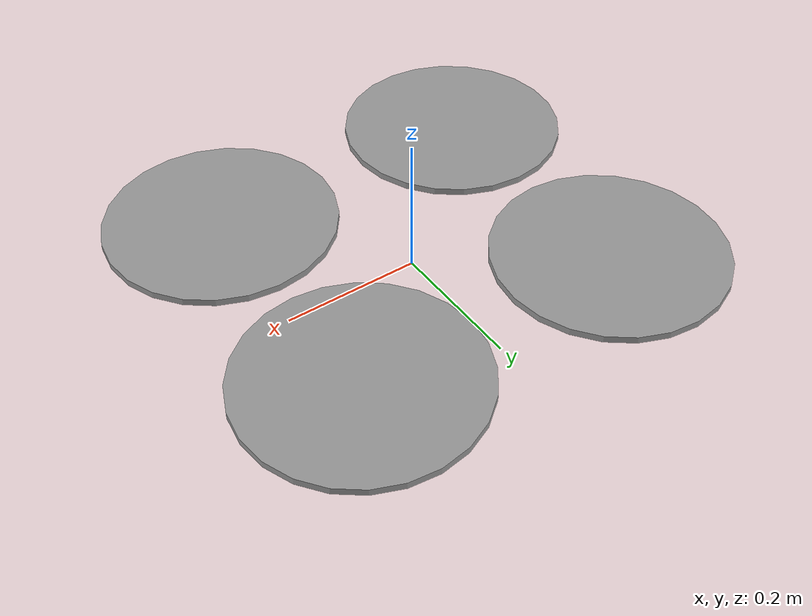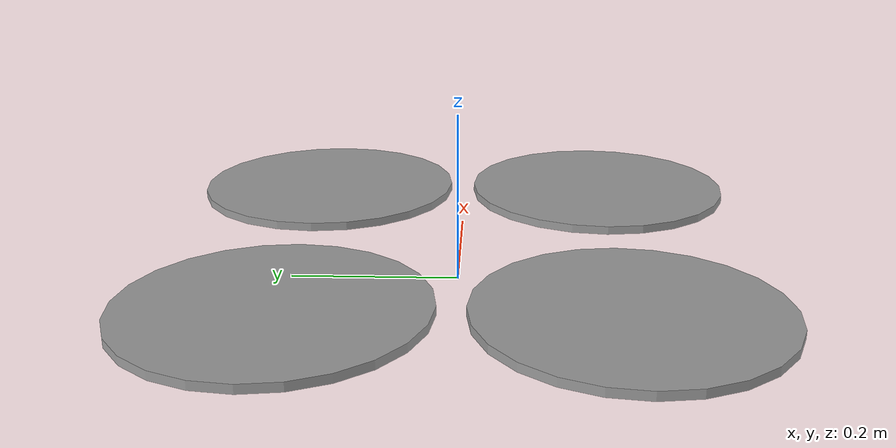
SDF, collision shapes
<?xml version="1.0"?>
<sdf version="1.6">
  <model name="Pam">
    <pose>0 0 0 0 0 0</pose>
    <link name="base_link">
      <pose frame="">0 0 0 0 -0 0</pose>
      <inertial>
        <pose frame="">0 0 0 0 -0 0</pose>
        <mass>3.461</mass>
        <inertia>
          <ixx>0.0324</ixx>
          <iyy>0.0324</iyy>
          <izz>0.0519</izz>
        </inertia>
      </inertial>
      <collision name="base_link_inertia_collision">
        <pose frame="">0 0 -0.036503 0 -0 0</pose>
        <geometry>
          <box>
            <size>0.76 0.72 0.3</size>
          </box>
        </geometry>
      </collision>

      <visual name="plate1_visual">
        <pose>0.0 0.0 0.0 0 0 0</pose>
        <geometry>
	  <box>
	    <size>0.14 0.14 0.001</size>
	  </box>
        </geometry>
        <material>
	  <ambient>200 200 200 1</ambient>
	  <diffuse>200 200 200 1</diffuse>
        </material>
      </visual>
      <visual name="plate2_visual">
        <pose>0.0 0.0 -0.04 0 0 0</pose>
        <geometry>
	  <box>
	    <size>0.14 0.14 0.001</size>
	  </box>
        </geometry>
        <material>
	  <ambient>200 200 200 1</ambient>
	  <diffuse>200 200 200 1</diffuse>
        </material>
      </visual>
      <visual name="plate3_visual">
        <pose>0.0 0.0 -0.09 0 0 0</pose>
        <geometry>
	  <box>
	    <size>0.14 0.14 0.001</size>
	  </box>
        </geometry>
        <material>
	  <ambient>200 200 200 1</ambient>
	  <diffuse>200 200 200 1</diffuse>
        </material>
      </visual>
      <visual name="plate4_visual">
        <pose>0.015 0.0 -0.13 0 0 0</pose>
        <geometry>
	  <box>
	    <size>0.17 0.14 0.001</size>
	  </box>
        </geometry>
        <material>
	  <ambient>200 200 200 1</ambient>
	  <diffuse>200 200 200 1</diffuse>
        </material>
      </visual>
      <visual name="brix_visual">
        <pose>0.0 0.0 -0.065 0 0 0</pose>
        <geometry>
	  <box>
	    <size>0.12 0.12 0.05</size>
	  </box>
        </geometry>
        <material>
	  <ambient>2 2 2 1</ambient>
	  <diffuse>2 2 2 1</diffuse>
        </material>
      </visual>
      <visual name="battery_visual">
        <pose>0.0 0.0 -0.11 0 0 0</pose>
        <geometry>
	  <box>
	    <size>0.14 0.08 0.04</size>
	  </box>
        </geometry>
        <material>
	  <ambient>2 2 200 1</ambient>
	  <diffuse>2 2 200 1</diffuse>
        </material>
      </visual>

      <visual name="leg1_visual">
        <pose>0.08 0.11 -0.158 -0.6 0 0</pose>
        <geometry>
	  <box>
	    <size>0.04 0.1 0.001</size>
	  </box>
        </geometry>
        <material>
	  <ambient>150 150 150 1</ambient>
	  <diffuse>150 150 150 1</diffuse>
        </material>
      </visual>
      <visual name="leg2_visual">
        <pose>0.08 -0.11 -0.158 0.6 0 0</pose>
        <geometry>
	  <box>
	    <size>0.04 0.1 0.001</size>
	  </box>
        </geometry>
        <material>
	  <ambient>150 150 150 1</ambient>
	  <diffuse>150 150 150 1</diffuse>
        </material>
      </visual>
      <visual name="leg3_visual">
        <pose>-0.05 0.11 -0.158 -0.6 0 0</pose>
        <geometry>
	  <box>
	    <size>0.04 0.1 0.001</size>
	  </box>
        </geometry>
        <material>
	  <ambient>150 150 150 1</ambient>
	  <diffuse>150 150 150 1</diffuse>
        </material>
      </visual>
      <visual name="leg4_visual">
        <pose>-0.05 -0.11 -0.158 0.6 0 0</pose>
        <geometry>
	  <box>
	    <size>0.04 0.1 0.001</size>
	  </box>
        </geometry>
        <material>
	  <ambient>150 150 150 1</ambient>
	  <diffuse>150 150 150 1</diffuse>
        </material>
      </visual>

      <visual name="antenna1_visual">
        <pose>0.05 -0.05 0.05 0 0 0</pose>
        <geometry>
	  <cylinder>
            <length>0.1</length>
            <radius>0.005</radius>
	  </cylinder>
        </geometry>
      </visual>
      <visual name="antenna2_visual">
        <pose>-0.05 -0.05 0.05 0 0 0</pose>
        <geometry>
	  <cylinder>
            <length>0.1</length>
            <radius>0.005</radius>
	  </cylinder>
        </geometry>
        <material>
	  <ambient>15 15 15 1</ambient>
	  <diffuse>15 15 15 1</diffuse>
        </material>
      </visual>

      <visual name="prop_guard1_visual">
        <pose>0.38 0 0.05 1.570796327 0 0</pose>
        <geometry>
	  <cylinder>
            <length>0.48</length>
            <radius>0.002</radius>
	  </cylinder>
        </geometry>
        <material>
	  <ambient>15 15 15 1</ambient>
	  <diffuse>15 15 15 1</diffuse>
        </material>
      </visual>
      <visual name="prop_guard2_visual">
        <pose>0 0.36 0.05 0 1.570796327 0</pose>
        <geometry>
	  <cylinder>
            <length>0.52</length>
            <radius>0.002</radius>
	  </cylinder>
        </geometry>
        <material>
	  <ambient>15 15 15 1</ambient>
	  <diffuse>15 15 15 1</diffuse>
        </material>
      </visual>
      <visual name="prop_guard3_visual">
        <pose>-0.38 0 0.05 1.570796327 0 0</pose>
        <geometry>
	  <cylinder>
            <length>0.48</length>
            <radius>0.002</radius>
	  </cylinder>
        </geometry>
        <material>
	  <ambient>15 15 15 1</ambient>
	  <diffuse>15 15 15 1</diffuse>
        </material>
      </visual>
      <visual name="prop_guard4_visual">
        <pose>0 -0.36 0.05 0 1.570796327 0</pose>
        <geometry>
	  <cylinder>
            <length>0.52</length>
            <radius>0.002</radius>
	  </cylinder>
        </geometry>
        <material>
	  <ambient>15 15 15 1</ambient>
	  <diffuse>15 15 15 1</diffuse>
        </material>
      </visual>

      <visual name="prop_guard5_visual">
        <pose>0.32 0.3 0.05 1.570796327 0 0.7854</pose>
        <geometry>
	  <cylinder>
            <length>0.17</length>
            <radius>0.002</radius>
	  </cylinder>
        </geometry>
        <material>
	  <ambient>15 15 15 1</ambient>
	  <diffuse>15 15 15 1</diffuse>
        </material>
      </visual>
      <visual name="prop_guard6_visual">
        <pose>-0.32 -0.3 0.05 1.570796327 0 0.7854</pose>
        <geometry>
	  <cylinder>
            <length>0.17</length>
            <radius>0.002</radius>
	  </cylinder>
        </geometry>
        <material>
	  <ambient>15 15 15 1</ambient>
	  <diffuse>15 15 15 1</diffuse>
        </material>
      </visual>
      <visual name="prop_guard7_visual">
        <pose>-0.32 0.3 0.05 1.570796327 0 -0.7854</pose>
        <geometry>
	  <cylinder>
            <length>0.17</length>
            <radius>0.002</radius>
	  </cylinder>
        </geometry>
        <material>
	  <ambient>15 15 15 1</ambient>
	  <diffuse>15 15 15 1</diffuse>
        </material>
      </visual>
      <visual name="prop_guard8_visual">
        <pose>0.32 -0.3 0.05 1.570796327 0 -0.7854</pose>
        <geometry>
	  <cylinder>
            <length>0.17</length>
            <radius>0.002</radius>
	  </cylinder>
        </geometry>
        <material>
	  <ambient>15 15 15 1</ambient>
	  <diffuse>15 15 15 1</diffuse>
        </material>
      </visual>

      <visual name="prop_guard9_visual">
        <pose>0.32 0.3 0.025 0 0 0</pose>
        <geometry>
	  <cylinder>
            <length>0.055</length>
            <radius>0.004</radius>
	  </cylinder>
        </geometry>
        <material>
	  <ambient>15 15 15 1</ambient>
	  <diffuse>15 15 15 1</diffuse>
        </material>
      </visual>
      <visual name="prop_guard10_visual">
        <pose>-0.32 0.3 0.025 0 0 0</pose>
        <geometry>
	  <cylinder>
            <length>0.055</length>
            <radius>0.004</radius>
	  </cylinder>
        </geometry>
        <material>
	  <ambient>15 15 15 1</ambient>
	  <diffuse>15 15 15 1</diffuse>
        </material>
      </visual>
      <visual name="prop_guard11_visual">
        <pose>0.32 -0.3 0.025 0 0 0</pose>
        <geometry>
	  <cylinder>
            <length>0.055</length>
            <radius>0.004</radius>
	  </cylinder>
        </geometry>
        <material>
	  <ambient>15 15 15 1</ambient>
	  <diffuse>15 15 15 1</diffuse>
        </material>
      </visual>
      <visual name="prop_guard12_visual">
        <pose>-0.32 -0.3 0.025 0 0 0</pose>
        <geometry>
	  <cylinder>
            <length>0.055</length>
            <radius>0.004</radius>
	  </cylinder>
        </geometry>
        <material>
	  <ambient>15 15 15 1</ambient>
	  <diffuse>15 15 15 1</diffuse>
        </material>
      </visual>

      <visual name="prop_guard13_visual">
        <pose>0.265 0.245 -0.005 1.570796327 0 -0.7854</pose>
        <geometry>
	  <cylinder>
            <length>0.16</length>
            <radius>0.004</radius>
	  </cylinder>
        </geometry>
        <material>
	  <ambient>15 15 15 1</ambient>
	  <diffuse>15 15 15 1</diffuse>
        </material>
      </visual>
      <visual name="prop_guard14_visual">
        <pose>-0.265 -0.245 -0.005 1.570796327 0 -0.7854</pose>
        <geometry>
	  <cylinder>
            <length>0.16</length>
            <radius>0.004</radius>
	  </cylinder>
        </geometry>
        <material>
	  <ambient>15 15 15 1</ambient>
	  <diffuse>15 15 15 1</diffuse>
        </material>
      </visual>
      <visual name="prop_guard15_visual">
        <pose>-0.265 0.245 -0.005 1.570796327 0 0.7854</pose>
        <geometry>
	  <cylinder>
            <length>0.16</length>
            <radius>0.004</radius>
	  </cylinder>
        </geometry>
        <material>
	  <ambient>15 15 15 1</ambient>
	  <diffuse>15 15 15 1</diffuse>
        </material>
      </visual>
      <visual name="prop_guard16_visual">
        <pose>0.265 -0.245 -0.005 1.570796327 0 0.7854</pose>
        <geometry>
	  <cylinder>
            <length>0.16</length>
            <radius>0.004</radius>
	  </cylinder>
        </geometry>
        <material>
	  <ambient>15 15 15 1</ambient>
	  <diffuse>15 15 15 1</diffuse>
        </material>
      </visual>

      <visual name="arm1_visual">
        <pose>0.13 0.12 -0.005 0 0 0.74</pose>
        <geometry>
	  <box>
	    <size>0.21 0.03 0.01</size>
	  </box>
        </geometry>
        <material>
	  <ambient>15 15 15 1</ambient>
	  <diffuse>15 15 15 1</diffuse>
        </material>
      </visual>
      <visual name="arm2_visual">
        <pose>0.13 -0.12 -0.005 0 0 -0.74</pose>
        <geometry>
	  <box>
	    <size>0.21 0.03 0.01</size>
	  </box>
        </geometry>
        <material>
	  <ambient>15 15 15 1</ambient>
	  <diffuse>15 15 15 1</diffuse>
        </material>
      </visual>
      <visual name="arm3_visual">
        <pose>-0.13 0.12 -0.005 0 0 -0.74</pose>
        <geometry>
	  <box>
	    <size>0.21 0.03 0.01</size>
	  </box>
        </geometry>
        <material>
	  <ambient>250 250 250 1</ambient>
	  <diffuse>250 250 250 1</diffuse>
        </material>
      </visual>
      <visual name="arm4_visual">
        <pose>-0.13 -0.12 -0.005 0 0 0.74</pose>
        <geometry>
	  <box>
	    <size>0.21 0.03 0.01</size>
	  </box>
        </geometry>
        <material>
	  <ambient>250 250 250 1</ambient>
	  <diffuse>250 250 250 1</diffuse>
        </material>
      </visual>

      <visual name="arm1a_visual">
        <pose>0.06 0.06 -0.025 0 0 0.02</pose>
        <geometry>
	  <box>
	    <size>0.02 0.02 0.03</size>
	  </box>
        </geometry>
        <material>
	  <ambient>15 15 15 1</ambient>
	  <diffuse>15 15 15 1</diffuse>
        </material>
      </visual>
      <visual name="arm2a_visual">
        <pose>0.06 -0.06 -0.025 0 0 0.02</pose>
        <geometry>
	  <box>
	    <size>0.02 0.02 0.03</size>
	  </box>
        </geometry>
        <material>
	  <ambient>15 15 15 1</ambient>
	  <diffuse>15 15 15 1</diffuse>
        </material>
      </visual>
      <visual name="arm3a_visual">
        <pose>-0.06 0.06 -0.025 0 0 0.02</pose>
        <geometry>
	  <box>
	    <size>0.02 0.02 0.03</size>
	  </box>
        </geometry>
        <material>
	  <ambient>250 250 250 1</ambient>
	  <diffuse>250 250 250 1</diffuse>
        </material>
      </visual>
      <visual name="arm4a_visual">
        <pose>-0.06 -0.06 -0.025 0 0 0.02</pose>
        <geometry>
	  <box>
	    <size>0.02 0.02 0.03</size>
	  </box>
        </geometry>
        <material>
	  <ambient>250 250 250 1</ambient>
	  <diffuse>250 250 250 1</diffuse>
        </material>
      </visual>

      <visual name="motor1_visual">
        <pose>0.2 0.18 0.02 0 0 0</pose>
        <geometry>
	  <cylinder>
            <length>0.04</length>
            <radius>0.02</radius>
	  </cylinder>
        </geometry>
        <material>
	  <ambient>20 20 20 1</ambient>
	  <diffuse>20 20 20 1</diffuse>
        </material>
      </visual>
      <visual name="motor2_visual">
        <pose>-0.2 0.18 0.02 0 0 0</pose>
        <geometry>
	  <cylinder>
            <length>0.04</length>
            <radius>0.02</radius>
	  </cylinder>
        </geometry>
        <material>
	  <ambient>20 20 20 1</ambient>
	  <diffuse>20 20 20 1</diffuse>
        </material>
      </visual>
      <visual name="motor3_visual">
        <pose>0.2 -0.18 0.02 0 0 0</pose>
        <geometry>
	  <cylinder>
            <length>0.04</length>
            <radius>0.02</radius>
	  </cylinder>
        </geometry>
        <material>
	  <ambient>20 20 20 1</ambient>
	  <diffuse>20 20 20 1</diffuse>
        </material>
      </visual>
      <visual name="motor4_visual">
        <pose>-0.2 -0.18 0.02 0 0 0</pose>
        <geometry>
	  <cylinder>
            <length>0.04</length>
            <radius>0.02</radius>
	  </cylinder>
        </geometry>
        <material>
	  <ambient>20 20 20 1</ambient>
	  <diffuse>20 20 20 1</diffuse>
        </material>
      </visual>

      <visual name="lightbar_visual">
        <pose>0.095 -0.06 -0.1 0 0 0</pose>
        <geometry>
	  <box>
	    <size>0.001 0.02 0.06</size>
	  </box>
        </geometry>
        <material>
	  <ambient>200 200 200 1</ambient>
	  <diffuse>200 200 200 1</diffuse>
        </material>
      </visual>

      <light name="light_source1" type="spot">
        <pose frame="">0.1 -0.05 -0.11 -0.01 -1.570796327 0</pose>
        <attenuation>
          <range>15</range>
          <linear>0</linear>
          <constant>0.1</constant>
          <quadratic>0.01</quadratic>
        </attenuation>
        <diffuse>0.8 0.8 0.5 1</diffuse>
        <specular>0.8 0.8 0.5 1</specular>
        <spot>
          <inner_angle>1</inner_angle>
          <outer_angle>2.5</outer_angle>
          <falloff>1</falloff>
        </spot>
        <direction>0 0 -1</direction>
        <cast_shadows>1</cast_shadows>
      </light>
      <light name="light_source2" type="spot">
        <pose frame="">0 -0.09 -0.05 -0.01 -1.570796327 -1.570796327</pose>
        <attenuation>
          <range>15</range>
          <linear>0</linear>
          <constant>0.1</constant>
          <quadratic>0.01</quadratic>
        </attenuation>
        <diffuse>0.8 0.8 0.5 1</diffuse>
        <specular>0.8 0.8 0.5 1</specular>
        <spot>
          <inner_angle>1</inner_angle>
          <outer_angle>2.5</outer_angle>
          <falloff>1</falloff>
        </spot>
        <direction>0 0 -1</direction>
        <cast_shadows>1</cast_shadows>
      </light>
      <light name="light_source3" type="spot">
        <pose frame="">0 0.09 -0.05 -0.01 -1.570796327 1.570796327</pose>
        <attenuation>
          <range>15</range>
          <linear>0</linear>
          <constant>0.1</constant>
          <quadratic>0.01</quadratic>
        </attenuation>
        <diffuse>0.8 0.8 0.5 1</diffuse>
        <specular>0.8 0.8 0.5 1</specular>
        <spot>
          <inner_angle>1</inner_angle>
          <outer_angle>2.5</outer_angle>
          <falloff>1</falloff>
        </spot>
        <direction>0 0 -1</direction>
        <cast_shadows>1</cast_shadows>
      </light>

      <sensor name="imu_sensor" type="imu">
        <always_on>1</always_on>
        <update_rate>250</update_rate>
        <imu>
          <enable_orientation>0</enable_orientation>
          <angular_velocity>
            <x>
              <noise type="gaussian">
                <mean>0</mean>
                <stddev>0.009</stddev>
                <bias_mean>0.00075</bias_mean>
                <bias_stddev>0.005</bias_stddev>
                <dynamic_bias_stddev>0.00002</dynamic_bias_stddev>
                <dynamic_bias_correlation_time>400.0</dynamic_bias_correlation_time>
                <precision>0.00025</precision>
              </noise>
            </x>
            <y>
              <noise type="gaussian">
                <mean>0</mean>
                <stddev>0.009</stddev>
                <bias_mean>0.00075</bias_mean>
                <bias_stddev>0.005</bias_stddev>
                <dynamic_bias_stddev>0.00002</dynamic_bias_stddev>
                <dynamic_bias_correlation_time>400.0</dynamic_bias_correlation_time>
                <precision>0.00025</precision>
              </noise>
            </y>
            <z>
              <noise type="gaussian">
                <mean>0</mean>
                <stddev>0.009</stddev>
                <bias_mean>0.00075</bias_mean>
                <bias_stddev>0.005</bias_stddev>
                <dynamic_bias_stddev>0.00002</dynamic_bias_stddev>
                <dynamic_bias_correlation_time>400.0</dynamic_bias_correlation_time>
                <precision>0.00025</precision>
              </noise>
            </z>
          </angular_velocity>
          <linear_acceleration>
            <x>
              <noise type="gaussian">
                <mean>0</mean>
                <stddev>0.021</stddev>
                <bias_mean>0.05</bias_mean>
                <bias_stddev>0.0075</bias_stddev>
                <dynamic_bias_stddev>0.000375</dynamic_bias_stddev>
                <dynamic_bias_correlation_time>175.0</dynamic_bias_correlation_time>
                <precision>0.005</precision>
              </noise>
            </x>
            <y>
              <noise type="gaussian">
                <mean>0</mean>
                <stddev>0.021</stddev>
                <bias_mean>0.05</bias_mean>
                <bias_stddev>0.0075</bias_stddev>
                <dynamic_bias_stddev>0.000375</dynamic_bias_stddev>
                <dynamic_bias_correlation_time>175.0</dynamic_bias_correlation_time>
                <precision>0.005</precision>
              </noise>
            </y>
            <z>
              <noise type="gaussian">
                <mean>0</mean>
                <stddev>0.021</stddev>
                <bias_mean>0.05</bias_mean>
                <bias_stddev>0.0075</bias_stddev>
                <dynamic_bias_stddev>0.000375</dynamic_bias_stddev>
                <dynamic_bias_correlation_time>175.0</dynamic_bias_correlation_time>
                <precision>0.005</precision>
              </noise>
            </z>
          </linear_acceleration>
        </imu>
      </sensor>
      <sensor name="air_pressure" type="air_pressure">
        <always_on>1</always_on>
        <update_rate>20</update_rate>
        <air_pressure>
          <reference_altitude>0</reference_altitude>
          <noise type="gaussian">
            <mean>0.00000008</mean>
          </noise>
        </air_pressure>
      </sensor>
      <sensor name="magnetometer" type="magnetometer">
        <always_on>1</always_on>
        <update_rate>20</update_rate>
        <magnetometer>
          <x>
            <noise type="gaussian">
              <mean>0.000000080</mean>
              <bias_mean>0.000000400</bias_mean>
            </noise>
          </x>
          <y>
            <noise type="gaussian">
              <mean>0.000000080</mean>
              <bias_mean>0.000000400</bias_mean>
            </noise>
          </y>
          <z>
            <noise type="gaussian">
              <mean>0.000000080</mean>
              <bias_mean>0.000000400</bias_mean>
            </noise>
          </z>
        </magnetometer>
      </sensor>

      <visual name="d435_dae_front_visual">
        <pose>0.075 0 -0.13 0 0 0</pose>
        <geometry>
	  <mesh>
	    <scale>0.001 0.001 0.001</scale>
	    <uri>meshes/realsense_d435.dae</uri>
	  </mesh>
        </geometry>
      </visual>
      <visual name="d435_dae_left_visual">
        <pose>0 0.07 -0.117 1.570796327 0 1.570796327</pose>
        <geometry>
	  <mesh>
	    <scale>0.001 0.001 0.001</scale>
	    <uri>meshes/realsense_d435.dae</uri>
	  </mesh>
        </geometry>
      </visual>
      <visual name="d435_dae_right_visual">
        <pose>0.02 -0.07 -0.117 1.570796327 0 -1.570796327</pose>
        <geometry>
	  <mesh>
	    <scale>0.001 0.001 0.001</scale>
	    <uri>meshes/realsense_d435.dae</uri>
	  </mesh>
        </geometry>
      </visual>

      <sensor name="rgbd_front" type="rgbd_camera">
        <pose>0.105 0 -0.115 0 0 0</pose>
        <always_on>1</always_on>
        <update_rate>30</update_rate>
        <camera name="rgbd_front">
          <horizontal_fov>1.50098</horizontal_fov>
          <lens>
            <intrinsics>
              <!-- fx = fy = width / ( 2 * tan (hfov / 2 ) ) -->
              <fx>343.159</fx>
              <fy>343.159</fy>
              <!-- cx = ( width - 1 ) / 2 -->
              <cx>319.5</cx>
              <!-- cy = ( height - 1 ) / 2 -->
              <cy>179.5</cy>
              <s>0</s>
            </intrinsics>
          </lens>
          <distortion>
            <k1>0.0</k1>
            <k2>0.0</k2>
            <k3>0.0</k3>
            <p1>0.0</p1>
            <p2>0.0</p2>
            <center>0.5 0.5</center>
          </distortion>
          <image>
            <width>640</width>
            <height>360</height>
            <format>R8G8B8</format>
          </image>
          <clip>
            <near>0.01</near>
            <far>300</far>
          </clip>
          <depth_camera>
            <clip>
              <near>0.1</near>
              <far>10</far>
            </clip>
          </depth_camera>
          <noise>
            <type>gaussian</type>
            <mean>0</mean>
            <stddev>0.007</stddev>
          </noise>
        </camera>
      </sensor>

      <sensor name="rgbd_right" type="rgbd_camera">
        <pose>0.01 -0.1 -0.115 1.570796327 0 -1.570796327</pose>
        <always_on>1</always_on>
        <update_rate>30</update_rate>
        <camera name="rgbd_right">
          <horizontal_fov>1.50098</horizontal_fov>
          <lens>
            <intrinsics>
              <!-- fx = fy = width / ( 2 * tan (hfov / 2 ) ) -->
              <fx>343.159</fx>
              <fy>343.159</fy>
              <!-- cx = ( width - 1 ) / 2 -->
              <cx>319.5</cx>
              <!-- cy = ( height - 1 ) / 2 -->
              <cy>179.5</cy>
              <s>0</s>
            </intrinsics>
          </lens>
          <distortion>
            <k1>0.0</k1>
            <k2>0.0</k2>
            <k3>0.0</k3>
            <p1>0.0</p1>
            <p2>0.0</p2>
            <center>0.5 0.5</center>
          </distortion>
          <image>
            <width>640</width>
            <height>360</height>
            <format>R8G8B8</format>
          </image>
          <clip>
            <near>0.01</near>
            <far>300</far>
          </clip>
          <depth_camera>
            <clip>
              <near>0.1</near>
              <far>10</far>
            </clip>
          </depth_camera>
          <noise>
            <type>gaussian</type>
            <mean>0</mean>
            <stddev>0.007</stddev>
          </noise>
        </camera>
      </sensor>

      <sensor name="rgbd_left" type="rgbd_camera">
        <pose>0.01 0.1 -0.115 1.570796327 0 1.570796327</pose>
        <always_on>1</always_on>
        <update_rate>30</update_rate>
        <camera name="rgbd_left">
          <horizontal_fov>1.50098</horizontal_fov>
          <lens>
            <intrinsics>
              <!-- fx = fy = width / ( 2 * tan (hfov / 2 ) ) -->
              <fx>343.159</fx>
              <fy>343.159</fy>
              <!-- cx = ( width - 1 ) / 2 -->
              <cx>319.5</cx>
              <!-- cy = ( height - 1 ) / 2 -->
              <cy>179.5</cy>
              <s>0</s>
            </intrinsics>
          </lens>
          <distortion>
            <k1>0.0</k1>
            <k2>0.0</k2>
            <k3>0.0</k3>
            <p1>0.0</p1>
            <p2>0.0</p2>
            <center>0.5 0.5</center>
          </distortion>
          <image>
            <width>640</width>
            <height>360</height>
            <format>R8G8B8</format>
          </image>
          <clip>
            <near>0.01</near>
            <far>300</far>
          </clip>
          <depth_camera>
            <clip>
              <near>0.1</near>
              <far>10</far>
            </clip>
          </depth_camera>
          <noise>
            <type>gaussian</type>
            <mean>0</mean>
            <stddev>0.007</stddev>
          </noise>
        </camera>
      </sensor>

      <sensor name="top_laser" type="gpu_ray">
        <pose>0.0 -0.03 0.06 0 1.57 0</pose>
        <update_rate>50</update_rate>
        <lidar>
          <scan>
            <horizontal>
              <samples>1</samples>
              <resolution>1</resolution>
              <min_angle>3.141592654</min_angle>
              <max_angle>3.141592654</max_angle>
            </horizontal>
          </scan>
          <range>
            <min>0.05</min>
            <max>40</max>
            <resolution>0.01</resolution>
          </range>
          <noise>
            <type>gaussian</type>
            <mean>0</mean>
            <stddev>0.01</stddev>
          </noise>
        </lidar>
      </sensor>
      <sensor name="bottom_laser" type="gpu_ray">
        <pose>0.0 0 -0.14 0 -1.57 0</pose>
        <update_rate>50</update_rate>
        <lidar>
          <scan>
            <horizontal>
              <samples>1</samples>
              <resolution>1</resolution>
              <min_angle>3.141592654</min_angle>
              <max_angle>3.141592654</max_angle>
            </horizontal>
          </scan>
          <range>
            <min>0.05</min>
            <max>40</max>
            <resolution>0.01</resolution>
          </range>
          <noise>
            <type>gaussian</type>
            <mean>0</mean>
            <stddev>0.01</stddev>
          </noise>
        </lidar>
      </sensor>
    </link>

    <link name="rotor_0">
      <pose frame="">0.2 -0.18 0.05 0 -0 0</pose>
      <inertial>
        <pose frame="">0 0 0 0 -0 0</pose>
        <mass>0.024</mass>
        <inertia>
          <ixx>1e-05</ixx>
          <ixy>0</ixy>
          <ixz>0</ixz>
          <iyy>4e-04</iyy>
          <iyz>0</iyz>
          <izz>4e-04</izz>
        </inertia>
      </inertial>
      <collision name="rotor_0_collision">
        <pose frame="">0 0 0 0 -0 0</pose>
        <geometry>
          <cylinder>
            <length>0.01</length>
            <radius>0.165</radius>
          </cylinder>
        </geometry>
        <surface>
          <contact>
            <ode/>
          </contact>
          <friction>
            <ode/>
          </friction>
        </surface>
      </collision>
      <visual name="rotor_0_visual">
        <pose frame="">0 0 0 0 -0 0</pose>
        <geometry>
          <mesh>
            <scale>0.165 0.165 0.165</scale>
            <uri>meshes/propeller_ccw.dae</uri>
          </mesh>
        </geometry>
        <material>
          <diffuse>0.5 0.5 0.5 1</diffuse>
          <script>
            <name>Gazebo/Grey</name>
            <uri>file://media/materials/scripts/gazebo.material</uri>
          </script>
        </material>
        <cast_shadows>0</cast_shadows>
      </visual>
      <gravity>1</gravity>
      <velocity_decay/>
    </link>
    <joint name="rotor_0_joint" type="revolute">
      <child>rotor_0</child>
      <parent>base_link</parent>
      <axis>
        <xyz>0 0 1</xyz>
        <limit>
          <lower>-1e+16</lower>
          <upper>1e+16</upper>
        </limit>
        <dynamics>
          <spring_reference>0</spring_reference>
          <spring_stiffness>0</spring_stiffness>
        </dynamics>
        <use_parent_model_frame>1</use_parent_model_frame>
      </axis>
    </joint>
    <link name="rotor_1">
      <pose frame="">-0.2 0.18 0.05 0 -0 0</pose>
      <inertial>
        <pose frame="">0 0 0 0 -0 0</pose>
        <mass>0.024</mass>
        <inertia>
          <ixx>1e-05</ixx>
          <ixy>0</ixy>
          <ixz>0</ixz>
          <iyy>4e-04</iyy>
          <iyz>0</iyz>
          <izz>4e-04</izz>
        </inertia>
      </inertial>
      <collision name="rotor_1_collision">
        <pose frame="">0 0 0 0 -0 0</pose>
        <geometry>
          <cylinder>
            <length>0.01</length>
            <radius>0.165</radius>
          </cylinder>
        </geometry>
        <surface>
          <contact>
            <ode/>
          </contact>
          <friction>
            <ode/>
          </friction>
        </surface>
      </collision>
      <visual name="rotor_1_visual">
        <pose frame="">0 0 0 0 -0 0</pose>
        <geometry>
          <mesh>
            <scale>0.165 0.165 0.165</scale>
            <uri>meshes/propeller_ccw.dae</uri>
          </mesh>
        </geometry>
        <material>
          <diffuse>0.5 0.5 0.5 1</diffuse>
          <script>
            <name>Gazebo/Grey</name>
            <uri>file://media/materials/scripts/gazebo.material</uri>
          </script>
        </material>
        <cast_shadows>0</cast_shadows>
      </visual>
      <gravity>1</gravity>
      <velocity_decay/>
    </link>
    <joint name="rotor_1_joint" type="revolute">
      <child>rotor_1</child>
      <parent>base_link</parent>
      <axis>
        <xyz>0 0 1</xyz>
        <limit>
          <lower>-1e+16</lower>
          <upper>1e+16</upper>
        </limit>
        <dynamics>
          <spring_reference>0</spring_reference>
          <spring_stiffness>0</spring_stiffness>
        </dynamics>
        <use_parent_model_frame>1</use_parent_model_frame>
      </axis>
    </joint>
    <link name="rotor_2">
      <pose frame="">0.2 0.18 0.05 0 -0 0</pose>
      <inertial>
        <pose frame="">0 0 0 0 -0 0</pose>
        <mass>0.024</mass>
        <inertia>
          <ixx>1e-05</ixx>
          <ixy>0</ixy>
          <ixz>0</ixz>
          <iyy>4e-04</iyy>
          <iyz>0</iyz>
          <izz>4e-04</izz>
        </inertia>
      </inertial>
      <collision name="rotor_2_collision">
        <pose frame="">0 0 0 0 -0 0</pose>
        <geometry>
          <cylinder>
            <length>0.01</length>
            <radius>0.165</radius>
          </cylinder>
        </geometry>
        <surface>
          <contact>
            <ode/>
          </contact>
          <friction>
            <ode/>
          </friction>
        </surface>
      </collision>
      <visual name="rotor_2_visual">
        <pose frame="">0 0 0 0 -0 0</pose>
        <geometry>
          <mesh>
            <scale>0.165 0.165 0.165</scale>
            <uri>meshes/propeller_cw.dae</uri>
          </mesh>
        </geometry>
        <material>
          <diffuse>0.5 0.5 0.5 1</diffuse>
          <script>
            <name>Gazebo/Grey</name>
            <uri>file://media/materials/scripts/gazebo.material</uri>
          </script>
        </material>
        <cast_shadows>0</cast_shadows>
      </visual>
      <gravity>1</gravity>
      <velocity_decay/>
    </link>
    <joint name="rotor_2_joint" type="revolute">
      <child>rotor_2</child>
      <parent>base_link</parent>
      <axis>
        <xyz>0 0 1</xyz>
        <limit>
          <lower>-1e+16</lower>
          <upper>1e+16</upper>
        </limit>
        <dynamics>
          <spring_reference>0</spring_reference>
          <spring_stiffness>0</spring_stiffness>
        </dynamics>
        <use_parent_model_frame>1</use_parent_model_frame>
      </axis>
    </joint>
    <link name="rotor_3">
      <pose frame="">-0.2 -0.18 0.05 0 -0 0</pose>
      <inertial>
        <pose frame="">0 0 0 0 -0 0</pose>
        <mass>0.024</mass>
        <inertia>
          <ixx>1e-05</ixx>
          <ixy>0</ixy>
          <ixz>0</ixz>
          <iyy>4e-04</iyy>
          <iyz>0</iyz>
          <izz>4e-04</izz>
        </inertia>
      </inertial>
      <collision name="rotor_3_collision">
        <pose frame="">0 0 0 0 -0 0</pose>
        <geometry>
          <cylinder>
            <length>0.01</length>
            <radius>0.165</radius>
          </cylinder>
        </geometry>
        <surface>
          <contact>
            <ode/>
          </contact>
          <friction>
            <ode/>
          </friction>
        </surface>
      </collision>
      <visual name="rotor_3_visual">
        <pose frame="">0 0 0 0 -0 0</pose>
        <geometry>
          <mesh>
            <scale>0.165 0.165 0.165</scale>
            <uri>meshes/propeller_cw.dae</uri>
          </mesh>
        </geometry>
        <material>
          <diffuse>0.5 0.5 0.5 1</diffuse>
          <script>
            <name>Gazebo/Grey</name>
            <uri>file://media/materials/scripts/gazebo.material</uri>
          </script>
        </material>
        <cast_shadows>0</cast_shadows>
      </visual>
      <gravity>1</gravity>
      <velocity_decay/>
    </link>
    <joint name="rotor_3_joint" type="revolute">
      <child>rotor_3</child>
      <parent>base_link</parent>
      <axis>
        <xyz>0 0 1</xyz>
        <limit>
          <lower>-1e+16</lower>
          <upper>1e+16</upper>
        </limit>
        <dynamics>
          <spring_reference>0</spring_reference>
          <spring_stiffness>0</spring_stiffness>
        </dynamics>
        <use_parent_model_frame>1</use_parent_model_frame>
      </axis>
    </joint>
  </model>
</sdf>
